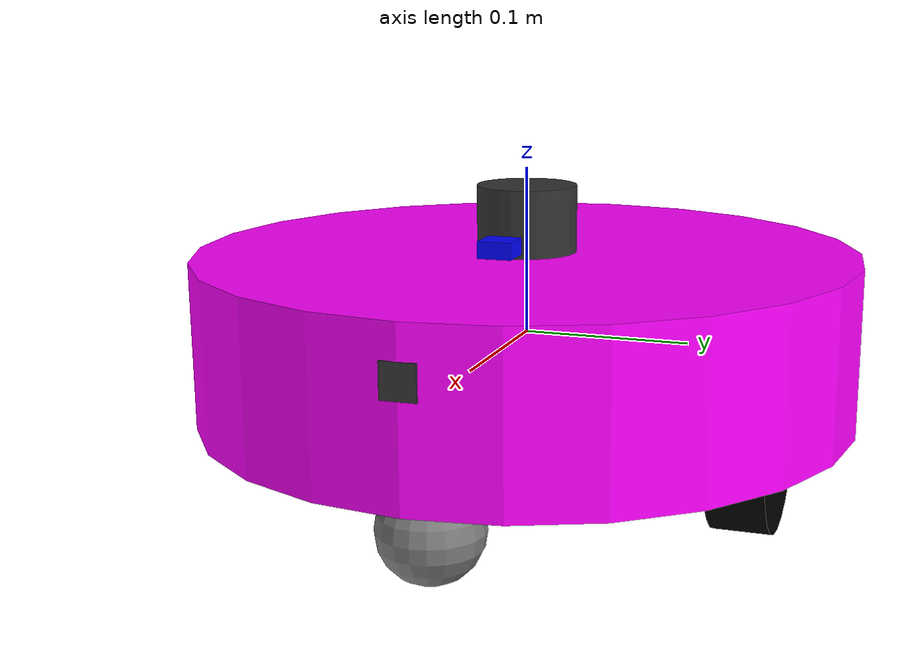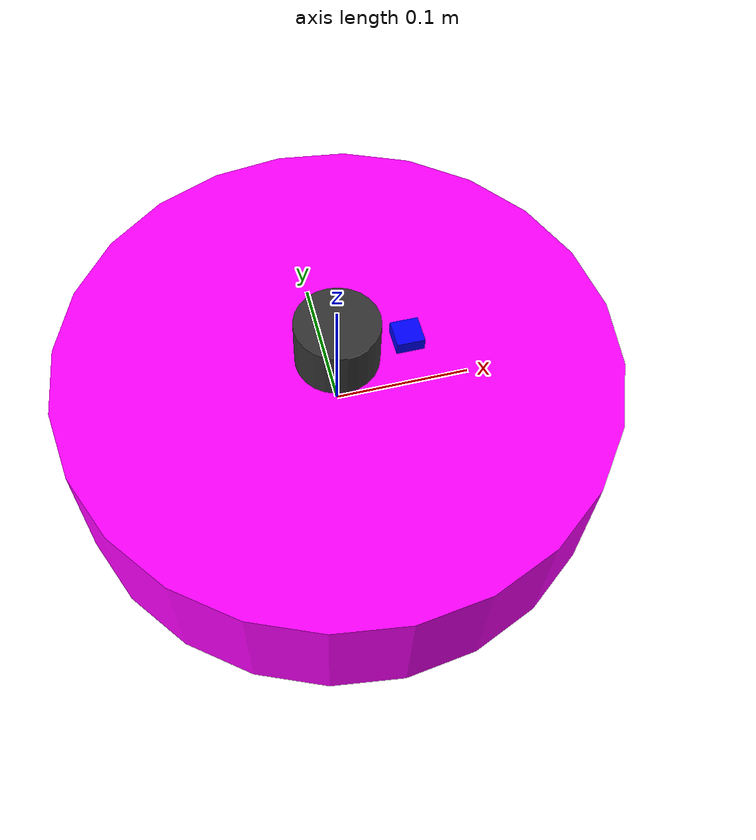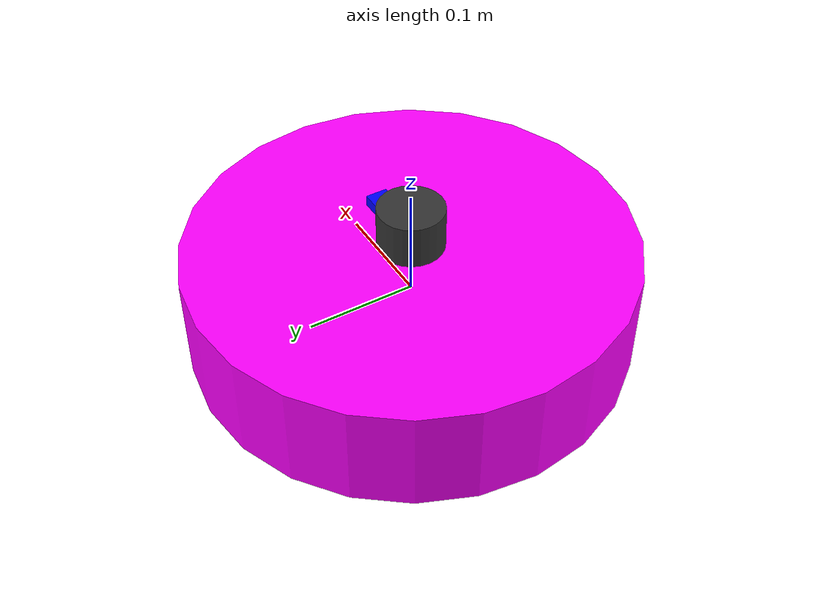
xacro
<?xml version="1.0"?>
<robot name="my_robot">

  <!-- ================= BASE ================= -->

  <link name="base_link">
    <visual>
      <origin xyz="0 0 0" rpy="0 0 0"/>
      <geometry>
        <cylinder radius="0.20" length="0.10"/>
      </geometry>
      <material name="magenta">
        <color rgba="1 0 1 1"/>
      </material>
    </visual>

    <collision>
      <origin xyz="0 0 0" rpy="0 0 0"/>
      <geometry>
        <cylinder radius="0.20" length="0.10"/>
      </geometry>
    </collision>

    <inertial>
      <origin xyz="0 0 0" rpy="0 0 0"/>
      <mass value="2.0"/>
      <inertia ixx="0.02167" ixy="0.0" ixz="0.0"
               iyy="0.02167" iyz="0.0"
               izz="0.04000"/>
    </inertial>
  </link>

  <!-- ================= LEFT WHEEL ================= -->

  <joint name="left_wheel_joint" type="continuous">
    <origin xyz="0 0.14 -0.05" rpy="1.5708 0 0"/>
    <parent link="base_link"/>
    <child link="left_wheel_link"/>
    <axis xyz="0 0 -1"/>
  </joint>

  <link name="left_wheel_link">
    <visual>
      <origin xyz="0 0 0" rpy="0 0 0"/>
      <geometry>
        <cylinder radius="0.06" length="0.035"/>
      </geometry>
      <material name="black">
        <color rgba="0 0 0 1"/>
      </material>
    </visual>

    <collision>
      <origin xyz="0 0 0" rpy="0 0 0"/>
      <geometry>
        <cylinder radius="0.06" length="0.035"/>
      </geometry>
    </collision>

    <inertial>
      <origin xyz="0 0 0" rpy="0 0 0"/>
      <mass value="0.2"/>
      <inertia ixx="0.0002004" ixy="0.0" ixz="0.0"
               iyy="0.0002004" iyz="0.0"
               izz="0.00036"/>
    </inertial>
  </link>

  <!-- ================= RIGHT WHEEL ================= -->

  <joint name="right_wheel_joint" type="continuous">
    <origin xyz="0 -0.14 -0.05" rpy="1.5708 0 0"/>
    <parent link="base_link"/>
    <child link="right_wheel_link"/>
    <axis xyz="0 0 -1"/>
  </joint>

  <link name="right_wheel_link">
    <visual>
      <origin xyz="0 0 0" rpy="0 0 0"/>
      <geometry>
        <cylinder radius="0.06" length="0.035"/>
      </geometry>
      <material name="black">
        <color rgba="0 0 0 1"/>
      </material>
    </visual>

    <collision>
      <origin xyz="0 0 0" rpy="0 0 0"/>
      <geometry>
        <cylinder radius="0.06" length="0.035"/>
      </geometry>
    </collision>

    <inertial>
      <origin xyz="0 0 0" rpy="0 0 0"/>
      <mass value="0.2"/>
      <inertia ixx="0.0002004" ixy="0.0" ixz="0.0"
               iyy="0.0002004" iyz="0.0"
               izz="0.00036"/>
    </inertial>
  </link>

  <!-- ================= FRONT CASTER ================= -->
  <!-- +X = FRONT -->

  <joint name="caster_wheel_joint" type="fixed">
    <origin xyz="0.16 0 -0.07" rpy="0 0 0"/>
    <parent link="base_link"/>
    <child link="caster_wheel_link"/>
  </joint>

  <link name="caster_wheel_link">
    <visual>
      <origin xyz="0 0 0" rpy="0 0 0"/>
      <geometry>
        <sphere radius="0.030"/>
      </geometry>
      <material name="grey">
        <color rgba="0.5 0.5 0.5 1"/>
      </material>
    </visual>

    <collision>
      <origin xyz="0 0 0" rpy="0 0 0"/>
      <geometry>
        <sphere radius="0.030"/>
      </geometry>
    </collision>

    <inertial>
      <origin xyz="0 0 0" rpy="0 0 0"/>
      <mass value="0.20"/>
      <inertia ixx="7.2e-5" ixy="0.0" ixz="0.0"
               iyy="7.2e-5" iyz="0.0"
               izz="7.2e-5"/>
    </inertial>
  </link>

  <!-- ================= LIDAR ================= -->

  <joint name="lidar_joint" type="fixed">
    <origin xyz="0 0 0.07" rpy="0 0 0"/>
    <parent link="base_link"/>
    <child link="lidar_link"/>
  </joint>

  <link name="lidar_link">
    <visual>
      <origin xyz="0 0 0" rpy="0 0 0"/>
      <geometry>
        <cylinder radius="0.03" length="0.04"/>
      </geometry>
      <material name="dark_grey">
        <color rgba="0.2 0.2 0.2 1"/>
      </material>
    </visual>

    <collision>
      <origin xyz="0 0 0" rpy="0 0 0"/>
      <geometry>
        <cylinder radius="0.03" length="0.04"/>
      </geometry>
    </collision>

    <inertial>
      <origin xyz="0 0 0" rpy="0 0 0"/>
      <mass value="0.1"/>
      <inertia ixx="0.0000358" ixy="0.0" ixz="0.0"
               iyy="0.0000358" iyz="0.0"
               izz="0.000045"/>
    </inertial>
  </link>

  <!-- ================= IMU ================= -->

  <joint name="imu_joint" type="fixed">
    <origin xyz="0.05 0 0.06" rpy="0 0 0"/>
    <parent link="base_link"/>
    <child link="imu_link"/>
  </joint>

  <link name="imu_link">
    <visual>
      <origin xyz="0 0 0" rpy="0 0 0"/>
      <geometry>
        <box size="0.02 0.02 0.01"/>
      </geometry>
      <material name="blue">
        <color rgba="0 0 1 1"/>
      </material>
    </visual>

    <collision>
      <origin xyz="0 0 0" rpy="0 0 0"/>
      <geometry>
        <box size="0.02 0.02 0.01"/>
      </geometry>
    </collision>

    <inertial>
      <origin xyz="0 0 0" rpy="0 0 0"/>
      <mass value="0.05"/>
      <inertia ixx="0.00000208" ixy="0.0" ixz="0.0"
               iyy="0.00000208" iyz="0.0"
               izz="0.00000333"/>
    </inertial>
  </link>

  <!-- ================= REAR BRUSH ================= -->
  <!-- -X = REAR -->

  <joint name="brush_joint" type="fixed">
    <origin xyz="-0.10 0 -0.05" rpy="1.5708 0 0"/>
    <parent link="base_link"/>
    <child link="brush_link"/>
  </joint>

  <link name="brush_link">
    <visual>
      <origin xyz="0 0 0" rpy="0 0 0"/>
      <geometry>
        <cylinder radius="0.0225" length="0.22"/>
      </geometry>
      <material name="yellow">
        <color rgba="1 1 0 1"/>
      </material>
    </visual>

    <collision>
      <origin xyz="0 0 0" rpy="0 0 0"/>
      <geometry>
        <cylinder radius="0.0225" length="0.22"/>
      </geometry>
    </collision>

    <inertial>
      <origin xyz="0 0 0" rpy="0 0 0"/>
      <mass value="0.05"/>
      <inertia ixx="0.000208" ixy="0.0" ixz="0.0"
               iyy="0.000208" iyz="0.0"
               izz="0.0000127"/>
    </inertial>
  </link>

  <!-- ================= REAR INLET ================= -->

  <joint name="inlet_joint" type="fixed">
    <origin xyz="-0.05 0 -0.05" rpy="0 0 0"/>
    <parent link="base_link"/>
    <child link="inlet_link"/>
  </joint>

  <link name="inlet_link">
    <visual>
      <origin xyz="0 0 0" rpy="0 0 0"/>
      <geometry>
        <box size="0.01 0.22 0.015"/>
      </geometry>
      <material name="dark_grey">
        <color rgba="0.2 0.2 0.2 1"/>
      </material>
    </visual>

    <collision>
      <origin xyz="0 0 0" rpy="0 0 0"/>
      <geometry>
        <box size="0.01 0.22 0.015"/>
      </geometry>
    </collision>

    <inertial>
      <origin xyz="0 0 0" rpy="0 0 0"/>
      <mass value="0.005"/>
      <inertia ixx="0.0000202" ixy="0.0" ixz="0.0"
               iyy="0.000000135" iyz="0.0"
               izz="0.0000202"/>
    </inertial>
  </link>

  <!-- ================= FRONT CAMERA ================= -->
  <!-- +X = FRONT -->

  <joint name="camera_joint" type="fixed">
    <origin xyz="0.19 0 0.02" rpy="0 0 0"/>
    <parent link="base_link"/>
    <child link="camera_link"/>
  </joint>

  <link name="camera_link">
    <visual>
      <origin xyz="0 0 0" rpy="0 0 0"/>
      <geometry>
        <box size="0.02 0.02 0.02"/>
      </geometry>
      <material name="dark_grey">
        <color rgba="0.2 0.2 0.2 1"/>
      </material>
    </visual>

    <collision>
      <origin xyz="0 0 0" rpy="0 0 0"/>
      <geometry>
        <box size="0.02 0.02 0.02"/>
      </geometry>
    </collision>

    <inertial>
      <origin xyz="0 0 0" rpy="0 0 0"/>
      <mass value="0.05"/>
      <inertia ixx="0.00000333" ixy="0.0" ixz="0.0"
               iyy="0.00000333" iyz="0.0"
               izz="0.00000333"/>
    </inertial>
  </link>

  <!-- ================= GAZEBO PLUGINS ================= -->

  <gazebo>
    <plugin filename="gz-sim-sensors-system"
            name="gz::sim::systems::Sensors">
      <render_engine>ogre2</render_engine>
    </plugin>
  </gazebo>

  <gazebo>
    <plugin filename="gz-sim-imu-system"
            name="gz::sim::systems::Imu"/>
  </gazebo>

  <!-- ================= DIFFERENTIAL DRIVE ================= -->

  <gazebo>
    <plugin filename="gz-sim-diff-drive-system"
            name="gz::sim::systems::DiffDrive">

      <left_joint>left_wheel_joint</left_joint>
      <right_joint>right_wheel_joint</right_joint>

      <wheel_separation>0.28</wheel_separation>
      <wheel_radius>0.06</wheel_radius>

      <odom_publish_frequency>30</odom_publish_frequency>

      <topic>cmd_vel</topic>
      <odom_topic>odom</odom_topic>
      <tf_topic>tf</tf_topic>

      <frame_id>odom</frame_id>
      <child_frame_id>base_link</child_frame_id>

    </plugin>
  </gazebo>

  <!-- ================= JOINT STATES ================= -->

  <gazebo>
    <plugin filename="gz-sim-joint-state-publisher-system"
            name="gz::sim::systems::JointStatePublisher">
      <topic>joint_states</topic>
    </plugin>
  </gazebo>

  <!-- ================= LIDAR SENSOR ================= -->

  <gazebo reference="lidar_link">
    <sensor name="lidar_sensor" type="gpu_lidar">

      <always_on>true</always_on>
      <update_rate>20</update_rate>
      <visualize>true</visualize>

      <topic>/scan</topic>
      <frame_id>lidar_link</frame_id>
      <gz_frame_id>lidar_link</gz_frame_id>

      <lidar>
        <scan>
            <horizontal>
            <samples>720</samples>
            <resolution>1</resolution>
            <min_angle>-3.14159</min_angle>
            <max_angle>3.14159</max_angle>
          </horizontal>
        </scan>

        <range>
          <min>0.15</min>
          <max>15.0</max>
          <resolution>0.01</resolution>
        </range>

        <noise>
          <type>gaussian</type>
          <mean>0.0</mean>
          <stddev>0.005</stddev>
        </noise>

      </lidar>
    </sensor>
  </gazebo>
   <!-- ================= CAMERA SENSOR ================= -->
<gazebo reference="camera_link">
  <sensor name="camera_sensor" type="rgbd_camera">

    <pose>0 0 0 0 0 0</pose>
    <update_rate>15</update_rate>

    <camera>
      <horizontal_fov>1.047</horizontal_fov>

      <image>
        <width>960</width>
        <height>720</height>
        <format>R8G8B8</format>
      </image>

      <clip>
        <near>0.05</near>
        <far>20.0</far>
      </clip>

      <depth_camera>
        <clip>
          <near>0.1</near>
          <far>20.0</far>
        </clip>
      </depth_camera>
    </camera>

    <always_on>true</always_on>
    <visualize>true</visualize>

    <topic>camera</topic>
  </sensor>
  <sensor name="boundingbox_camera" type="boundingbox_camera">
    <pose>0 0 0 0 0 0</pose>
    <update_rate>15</update_rate>
    <camera>
      <box_type>2d</box_type>
      <horizontal_fov>1.047</horizontal_fov>
      <image>
        <width>960</width>
        <height>720</height>
      </image>
      <clip>
        <near>0.05</near>
        <far>20.0</far>
      </clip>
    </camera>
    <always_on>true</always_on>
    <visualize>false</visualize>
    <topic>boxes</topic>
  </sensor>
</gazebo>

  <!-- ================= IMU SENSOR ================= -->

  <gazebo reference="imu_link">
    <sensor name="imu_sensor" type="imu">

      <always_on>1</always_on>
      <update_rate>100</update_rate>

      <topic>imu/data</topic>

      <imu/>

    </sensor>
  </gazebo>

  <!-- ================= CASTER FRICTION ================= -->

  <gazebo reference="caster_wheel_link">
    <mu1>0.0</mu1>
    <mu2>0.0</mu2>
  </gazebo>

</robot>
